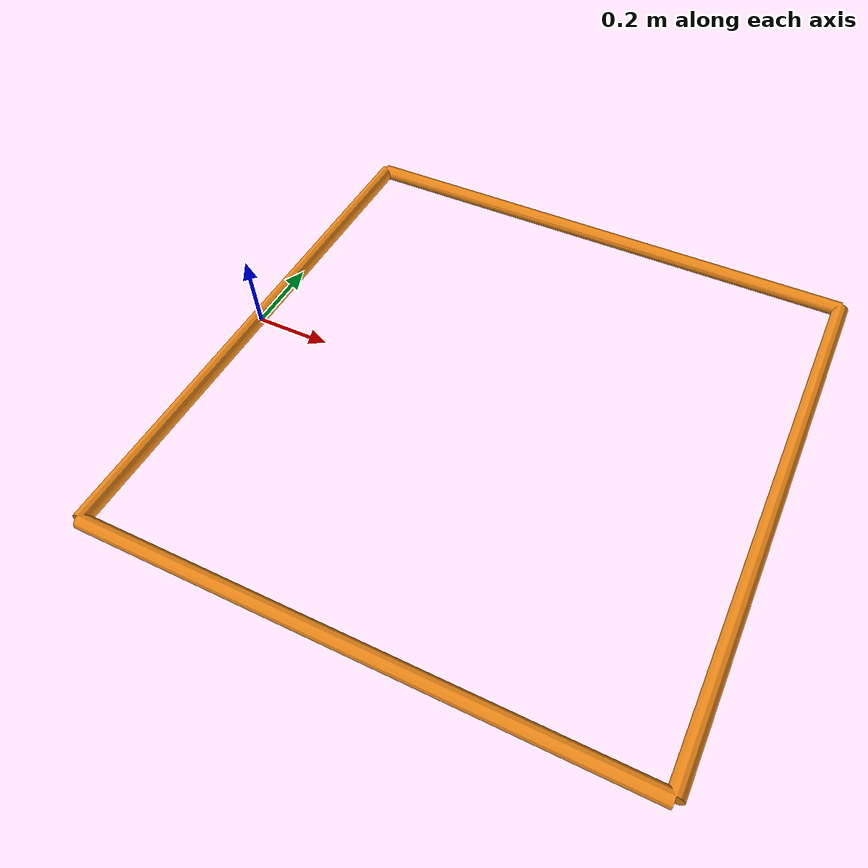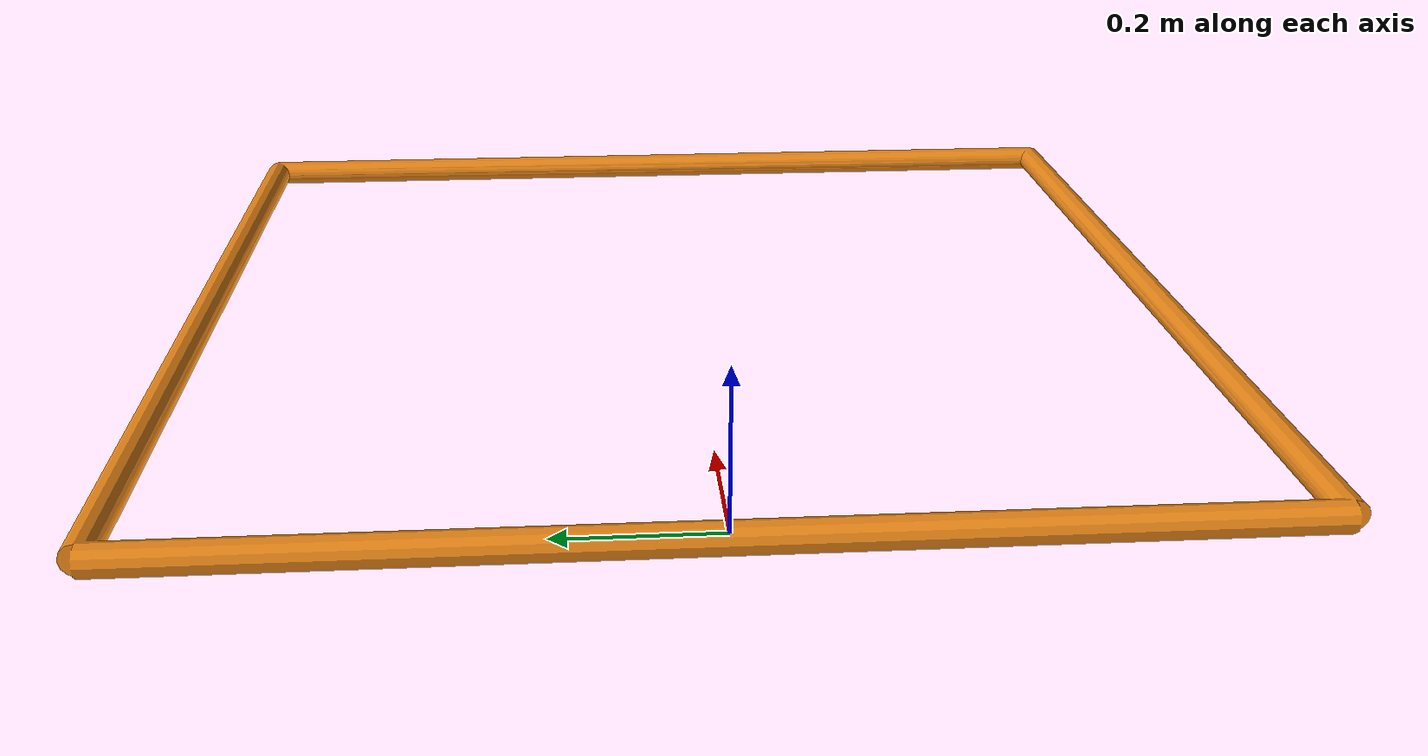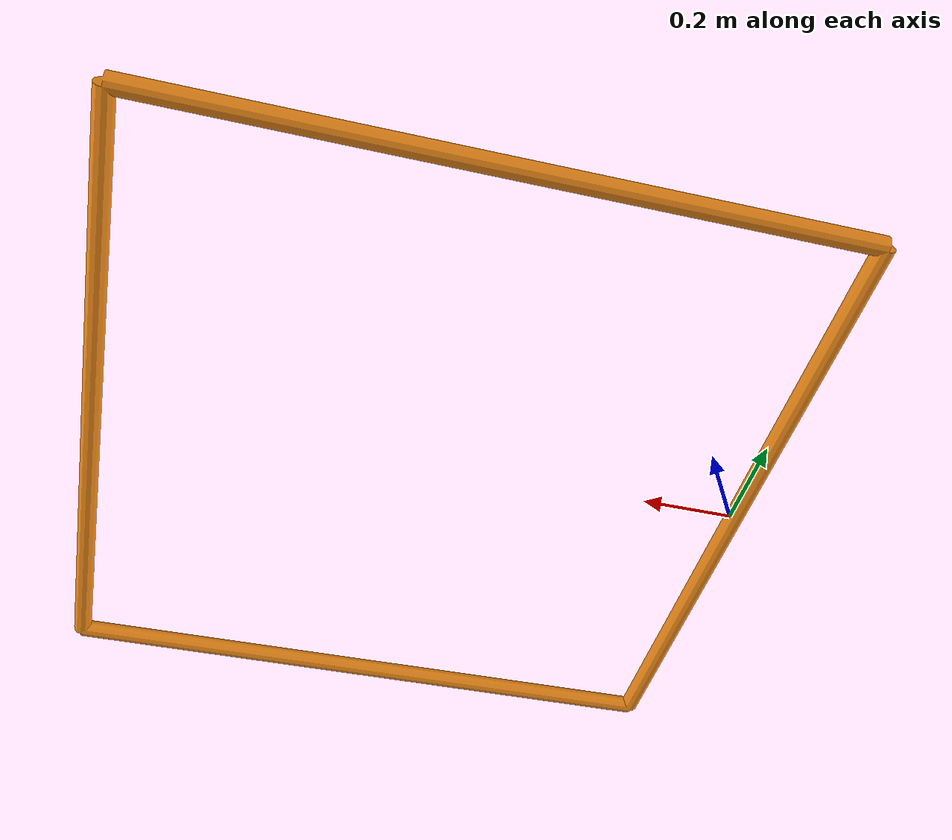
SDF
<?xml version='1.0'?>
<sdf version='1.7'>
  <model name='starting_gates'>
    <link name='base_link'>
      <inertial>
        <pose>0.69 -2e-06 0 0 -0 0</pose>
        <mass>30</mass>
        <inertia>
          <ixx>17.78</ixx>
          <ixy>-1.5236e-10</ixy>
          <ixz>0.000122</ixz>
          <iyy>17.78</iyy>
          <iyz>0.000122</iyz>
          <izz>35.549</izz>
        </inertia>
      </inertial>
      <self_collide>0</self_collide>
      <enable_wind>0</enable_wind>
      <kinematic>0</kinematic>
      <pose>0 0 0 0 -0 0</pose>
      <visual name='base_link_visual'>
        <pose>0 0 0 0 -0 0</pose>
        <geometry>
          <mesh>
            <scale>1 1 1</scale>
            <uri>/home/grigorian/simulator/src/starting_gates/meshes/base_link.STL</uri>
          </mesh>
        </geometry>
        <material>
          <script>
            <name>Gazebo/Orange</name>
            <uri>file://media/materials/scripts/gazebo.material</uri>
          </script>
          <shader type='pixel'/>
        </material>
        <transparency>0</transparency>
        <cast_shadows>1</cast_shadows>
      </visual>
      <collision name='base_link_collision'>
        <laser_retro>0</laser_retro>
        <max_contacts>10</max_contacts>
        <pose>0 0 0 0 -0 0</pose>
        <geometry>
          <mesh>
            <uri>/home/grigorian/simulator/src/starting_gates/meshes/base_link.STL</uri>
            <scale>1 1 1</scale>
          </mesh>
        </geometry>
        <surface>
          <friction>
            <ode>
              <mu>1</mu>
              <mu2>1</mu2>
              <fdir1>0 0 0</fdir1>
              <slip1>0</slip1>
              <slip2>0</slip2>
            </ode>
            <torsional>
              <coefficient>1</coefficient>
              <patch_radius>0</patch_radius>
              <surface_radius>0</surface_radius>
              <use_patch_radius>1</use_patch_radius>
              <ode>
                <slip>0</slip>
              </ode>
            </torsional>
          </friction>
          <bounce>
            <restitution_coefficient>0</restitution_coefficient>
            <threshold>1e+06</threshold>
          </bounce>
          <contact>
            <collide_without_contact>0</collide_without_contact>
            <collide_without_contact_bitmask>1</collide_without_contact_bitmask>
            <collide_bitmask>1</collide_bitmask>
            <ode>
              <soft_cfm>0</soft_cfm>
              <soft_erp>0.2</soft_erp>
              <kp>1e+13</kp>
              <kd>1</kd>
              <max_vel>0.01</max_vel>
              <min_depth>0</min_depth>
            </ode>
            <bullet>
              <split_impulse>1</split_impulse>
              <split_impulse_penetration_threshold>-0.01</split_impulse_penetration_threshold>
              <soft_cfm>0</soft_cfm>
              <soft_erp>0.2</soft_erp>
              <kp>1e+13</kp>
              <kd>1</kd>
            </bullet>
          </contact>
        </surface>
      </collision>
    </link>
    <static>1</static>
    <allow_auto_disable>1</allow_auto_disable>
  </model>
</sdf>
